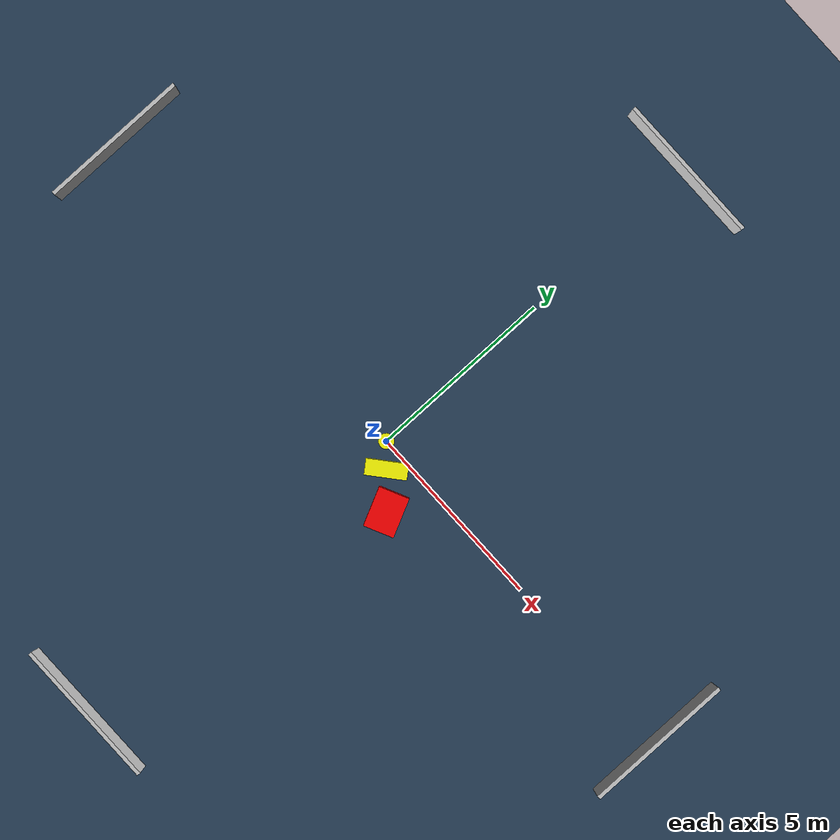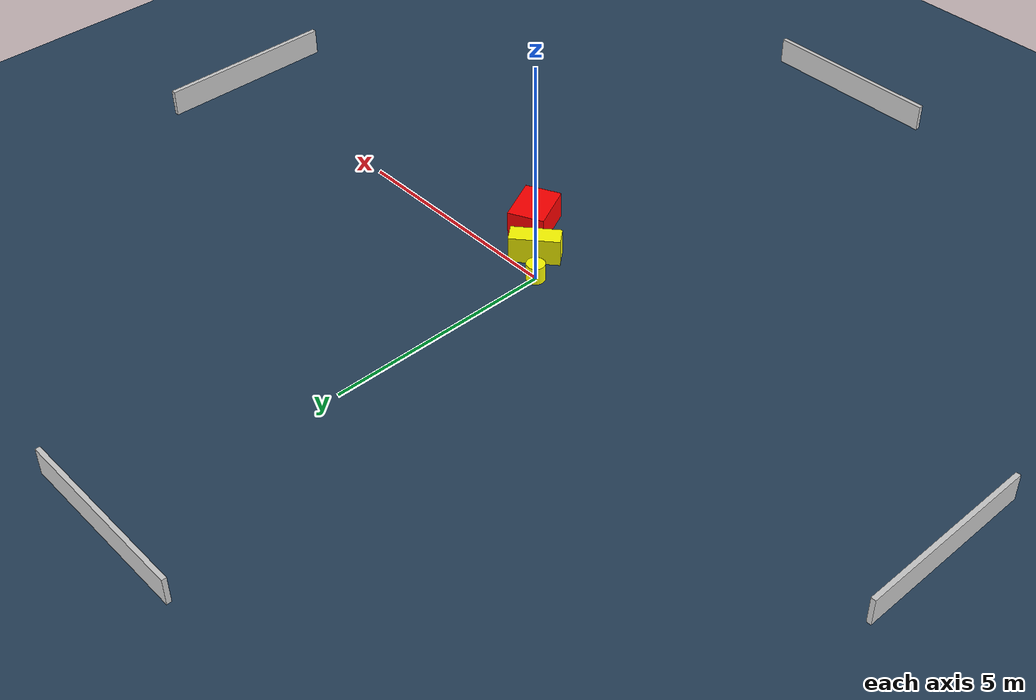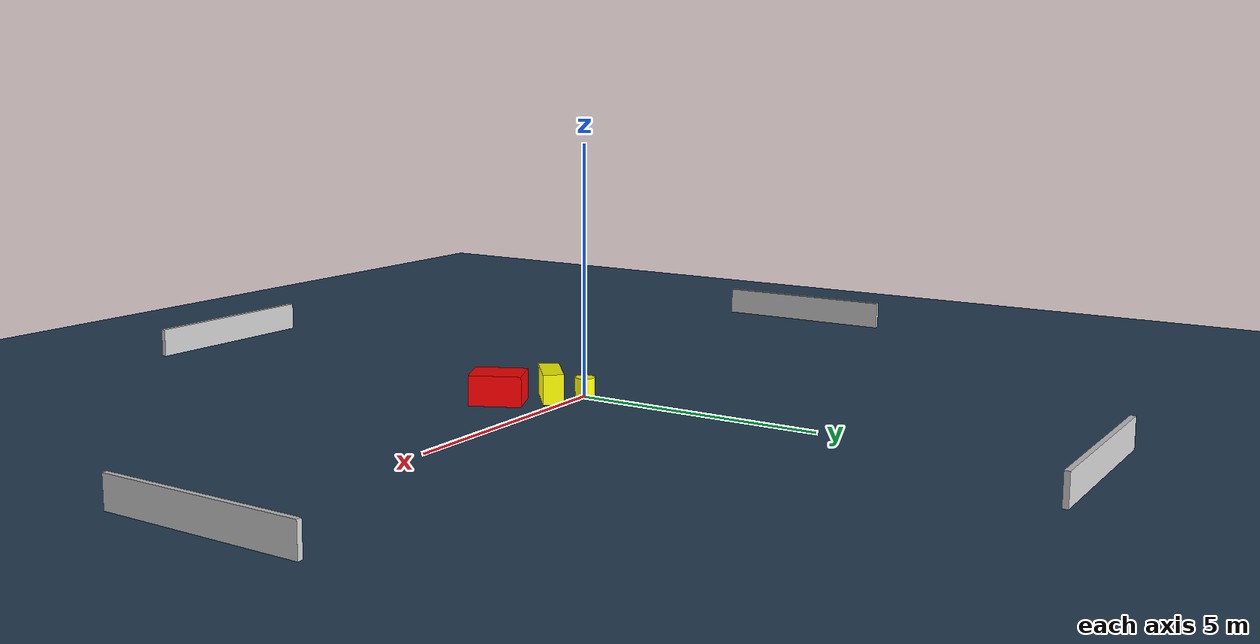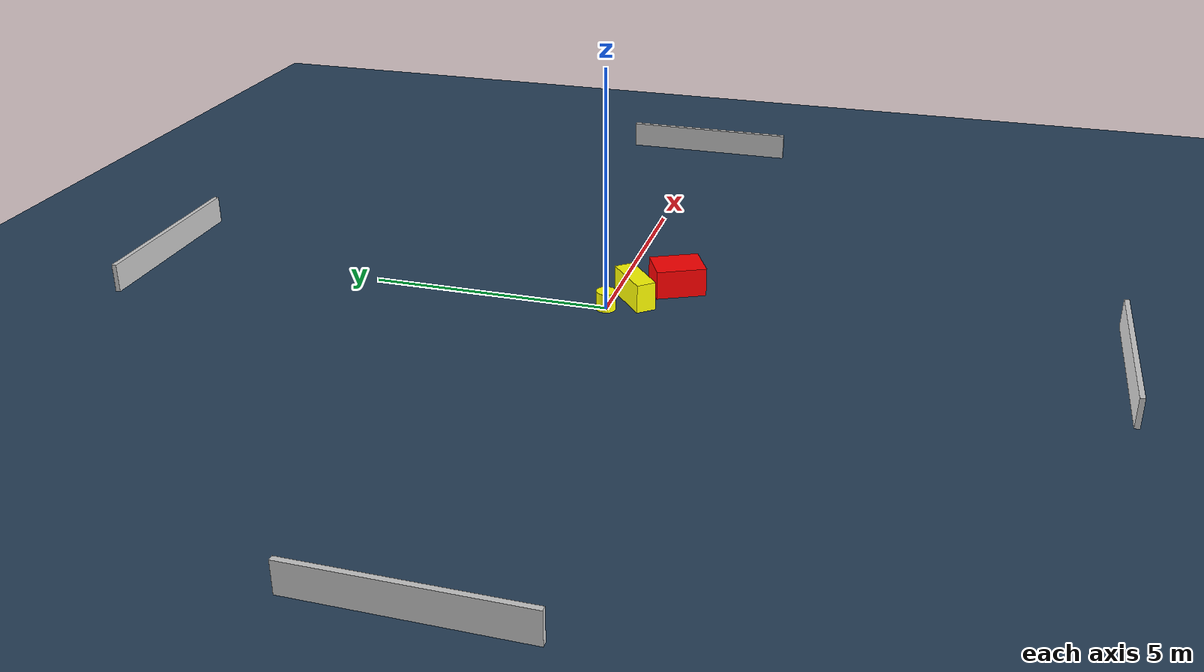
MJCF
<?xml version="1.0" ?>
<mujoco model="generated_environment">
  <option timestep="0.01" integrator="RK4" cone="elliptic"/>
  <default>
    <geom density="1"/>
  </default>
  <asset>
    <texture builtin="gradient" height="3072" name="skybox" rgb1="0.3 0.5 0.7" rgb2="0 0 0" type="skybox" width="512"/>
    <texture builtin="checker" height="300" name="groundplane" rgb1="0.2 0.3 0.4" rgb2="0.1 0.2 0.3" type="2d" width="300"/>
    <material name="groundplane" reflectance="0.2" texrepeat="5 5" texture="groundplane"/>
  </asset>
  <worldbody>
    <light dir="0 0 -1" directional="true" pos="0 0 1.5"/>
    <geom condim="3" friction="0.5 0.005 0.001" material="groundplane" name="floor" pos="0 0 0" size="0 0 0.05" type="plane"/>
    <body name="walls">
      <geom name="wall_1" condim="4" pos="-10.0 0.0 0.3" rgba="0.800000011920929 0.800000011920929 0.800000011920929 1.0" size="0.05 2.0 0.3" type="box"/>
      <geom name="wall_2" condim="4" pos="10.0 0.0 0.3" rgba="0.800000011920929 0.800000011920929 0.800000011920929 1.0" size="0.05 2.0 0.3" type="box"/>
      <geom name="wall_3" condim="4" pos="0.0 -10.0 0.3" rgba="0.800000011920929 0.800000011920929 0.800000011920929 1.0" size="2.0 0.05 0.3" type="box"/>
      <geom name="wall_4" condim="4" pos="0.0 10.0 0.3" rgba="0.800000011920929 0.800000011920929 0.800000011920929 1.0" size="2.0 0.05 0.3" type="box"/>
    </body>
    <body name="robot">
      <joint name="joint_x" type="slide" pos="0 0 0" axis="1 0 0"/>
      <joint name="joint_y" type="slide" pos="0 0 0" axis="0 1 0"/>
      <geom name="robot" type="cylinder" pos="0.0 0.0 0.2" size="0.2 0.2 0.0" mass="5.0" friction="1.0 0.005 0.0001" condim="4" rgba="1.0 1.0 0.0 1.0"/>
    </body>
    <body name="obstacle_1_movable">
      <geom name="obstacle_1_movable" condim="4" pos="0.5140590890186548 -0.4651314654899966 0.3" euler="0 0 220.05323600463294" friction="0.0 0.005 0.001" rgba="1.0 1.0 0.0 1.0" size="0.5355195480803256 0.20697502149218758 0.3" type="box" mass="0.1"/>
      <joint type="free"/>
    </body>
    <body name="obstacle_2_static">
      <geom name="obstacle_2_static" condim="4" pos="1.29494236883016 -1.1719208890159594 0.3" euler="0 0 205.72187545829726" friction="0.0 0.005 0.001" rgba="1.0 0.0 0.0 1.0" size="0.4010614367014971 0.5209677869251814 0.3" type="box"/>
    </body>
  </worldbody>
  <actuator>
    <motor name="actuator_x" joint="joint_x" gear="1" ctrlrange="-1 1"/>
    <motor name="actuator_y" joint="joint_y" gear="1" ctrlrange="-1 1"/>
  </actuator>
</mujoco>
